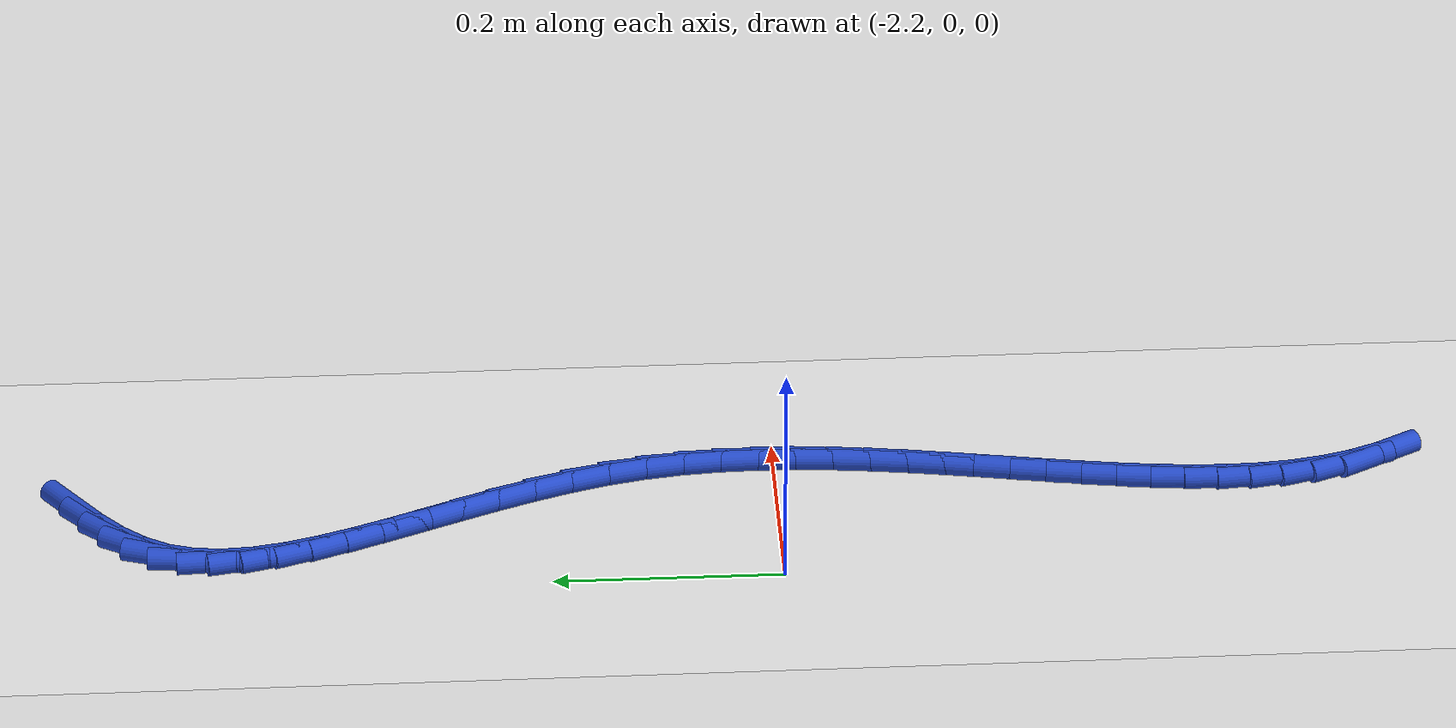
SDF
<sdf version="1.6">
 <world name="default">
  <model name="ground_plane">
   <static>1</static>
   <link name="link">
    <collision name="collision">
     <geometry><plane><normal>0 0 1</normal><size>100 100</size></plane></geometry>
     <surface><friction><ode><mu>100</mu><mu2>50</mu2></ode></friction></surface>
    </collision>
    <visual name="visual">
     <cast_shadows>0</cast_shadows>
     <geometry><plane><normal>0 0 1</normal><size>100 100</size></plane></geometry>
     <material>
      <script><uri>file://media/materials/scripts/gazebo.material</uri><name>Gazebo/WhiteGlow</name></script>
     </material>
    </visual>
   </link>
  </model>
  <model name="line">
   <link name="link_101">
    <pose>-2.079335822682489 0.6080927690205188 0.01 0 1.57 0.6452340867374168</pose>
    <collision name="collision">
     <geometry><cylinder><radius>0.01</radius><length>0.08</length></cylinder></geometry>
    </collision>
    <visual name="visual">
     <material>
      <script><name>Gazebo/Blue</name><uri>file://media/materials/scripts/gazebo.material</uri></script>
     </material>
     <geometry><cylinder><radius>0.01</radius><length>0.08</length></cylinder></geometry>
    </visual>
   </link>
   <link name="link_102">
    <pose>-2.103613552197989 0.5898186475611371 0.01 0 1.57 0.7309811095510289</pose>
    <collision name="collision">
     <geometry><cylinder><radius>0.01</radius><length>0.08</length></cylinder></geometry>
    </collision>
    <visual name="visual">
     <material>
      <script><name>Gazebo/Blue</name><uri>file://media/materials/scripts/gazebo.material</uri></script>
     </material>
     <geometry><cylinder><radius>0.01</radius><length>0.08</length></cylinder></geometry>
    </visual>
   </link>
   <link name="link_103">
    <pose>-2.1248468639873037 0.5707790354093718 0.01 0 1.57 0.8575633054270849</pose>
    <collision name="collision">
     <geometry><cylinder><radius>0.01</radius><length>0.08</length></cylinder></geometry>
    </collision>
    <visual name="visual">
     <material>
      <script><name>Gazebo/Blue</name><uri>file://media/materials/scripts/gazebo.material</uri></script>
     </material>
     <geometry><cylinder><radius>0.01</radius><length>0.08</length></cylinder></geometry>
    </visual>
   </link>
   <link name="link_104">
    <pose>-2.1422276333330315 0.5506895133046922 0.01 0 1.57 1.0349957607522082</pose>
    <collision name="collision">
     <geometry><cylinder><radius>0.01</radius><length>0.08</length></cylinder></geometry>
    </collision>
    <visual name="visual">
     <material>
      <script><name>Gazebo/Blue</name><uri>file://media/materials/scripts/gazebo.material</uri></script>
     </material>
     <geometry><cylinder><radius>0.01</radius><length>0.08</length></cylinder></geometry>
    </visual>
   </link>
   <link name="link_105">
    <pose>-2.1549477357759645 0.5292656620595214 0.01 0 1.57 1.2554170804062692</pose>
    <collision name="collision">
     <geometry><cylinder><radius>0.01</radius><length>0.08</length></cylinder></geometry>
    </collision>
    <visual name="visual">
     <material>
      <script><name>Gazebo/Blue</name><uri>file://media/materials/scripts/gazebo.material</uri></script>
     </material>
     <geometry><cylinder><radius>0.01</radius><length>0.08</length></cylinder></geometry>
    </visual>
   </link>
   <link name="link_106">
    <pose>-2.162443304194551 0.5062920783061883 0.01 0 1.57 1.4627438585432186</pose>
    <collision name="collision">
     <geometry><cylinder><radius>0.01</radius><length>0.08</length></cylinder></geometry>
    </collision>
    <visual name="visual">
     <material>
      <script><name>Gazebo/Blue</name><uri>file://media/materials/scripts/gazebo.material</uri></script>
     </material>
     <geometry><cylinder><radius>0.01</radius><length>0.08</length></cylinder></geometry>
    </visual>
   </link>
   <link name="link_107">
    <pose>-2.1650978001341064 0.481821029917903 0.01 0 1.57 -1.5100047591851165</pose>
    <collision name="collision">
     <geometry><cylinder><radius>0.01</radius><length>0.08</length></cylinder></geometry>
    </collision>
    <visual name="visual">
     <material>
      <script><name>Gazebo/Blue</name><uri>file://media/materials/scripts/gazebo.material</uri></script>
     </material>
     <geometry><cylinder><radius>0.01</radius><length>0.08</length></cylinder></geometry>
    </visual>
   </link>
   <link name="link_108">
    <pose>-2.163524316508735 0.45596966796583893 0.01 0 1.57 -1.3817315261582372</pose>
    <collision name="collision">
     <geometry><cylinder><radius>0.01</radius><length>0.08</length></cylinder></geometry>
    </collision>
    <visual name="visual">
     <material>
      <script><name>Gazebo/Blue</name><uri>file://media/materials/scripts/gazebo.material</uri></script>
     </material>
     <geometry><cylinder><radius>0.01</radius><length>0.08</length></cylinder></geometry>
    </visual>
   </link>
   <link name="link_109">
    <pose>-2.1583359462325404 0.4288551435211705 0.01 0 1.57 -1.2887148887508966</pose>
    <collision name="collision">
     <geometry><cylinder><radius>0.01</radius><length>0.08</length></cylinder></geometry>
    </collision>
    <visual name="visual">
     <material>
      <script><name>Gazebo/Blue</name><uri>file://media/materials/scripts/gazebo.material</uri></script>
     </material>
     <geometry><cylinder><radius>0.01</radius><length>0.08</length></cylinder></geometry>
    </visual>
   </link>
   <link name="link_110">
    <pose>-2.150145782219625 0.40059460765507054 0.01 0 1.57 -1.224192876022833</pose>
    <collision name="collision">
     <geometry><cylinder><radius>0.01</radius><length>0.08</length></cylinder></geometry>
    </collision>
    <visual name="visual">
     <material>
      <script><name>Gazebo/Blue</name><uri>file://media/materials/scripts/gazebo.material</uri></script>
     </material>
     <geometry><cylinder><radius>0.01</radius><length>0.08</length></cylinder></geometry>
    </visual>
   </link>
   <link name="link_111">
    <pose>-2.1395669173840943 0.371305211438713 0.01 0 1.57 -1.1824924988661036</pose>
    <collision name="collision">
     <geometry><cylinder><radius>0.01</radius><length>0.08</length></cylinder></geometry>
    </collision>
    <visual name="visual">
     <material>
      <script><name>Gazebo/Blue</name><uri>file://media/materials/scripts/gazebo.material</uri></script>
     </material>
     <geometry><cylinder><radius>0.01</radius><length>0.08</length></cylinder></geometry>
    </visual>
   </link>
   <link name="link_112">
    <pose>-2.127212444640051 0.3411041059432709 0.01 0 1.57 -1.159567567247763</pose>
    <collision name="collision">
     <geometry><cylinder><radius>0.01</radius><length>0.08</length></cylinder></geometry>
    </collision>
    <visual name="visual">
     <material>
      <script><name>Gazebo/Blue</name><uri>file://media/materials/scripts/gazebo.material</uri></script>
     </material>
     <geometry><cylinder><radius>0.01</radius><length>0.08</length></cylinder></geometry>
    </visual>
   </link>
   <link name="link_113">
    <pose>-2.1136954569016 0.31010844223991874 0.01 0 1.57 -1.1528491391381281</pose>
    <collision name="collision">
     <geometry><cylinder><radius>0.01</radius><length>0.08</length></cylinder></geometry>
    </collision>
    <visual name="visual">
     <material>
      <script><name>Gazebo/Blue</name><uri>file://media/materials/scripts/gazebo.material</uri></script>
     </material>
     <geometry><cylinder><radius>0.01</radius><length>0.08</length></cylinder></geometry>
    </visual>
   </link>
   <link name="link_114">
    <pose>-2.099629047082843 0.27843537139982966 0.01 0 1.57 -1.1609756282568922</pose>
    <collision name="collision">
     <geometry><cylinder><radius>0.01</radius><length>0.08</length></cylinder></geometry>
    </collision>
    <visual name="visual">
     <material>
      <script><name>Gazebo/Blue</name><uri>file://media/materials/scripts/gazebo.material</uri></script>
     </material>
     <geometry><cylinder><radius>0.01</radius><length>0.08</length></cylinder></geometry>
    </visual>
   </link>
   <link name="link_115">
    <pose>-2.085626308097885 0.24620204449417687 0.01 0 1.57 -1.1835701394138516</pose>
    <collision name="collision">
     <geometry><cylinder><radius>0.01</radius><length>0.08</length></cylinder></geometry>
    </collision>
    <visual name="visual">
     <material>
      <script><name>Gazebo/Blue</name><uri>file://media/materials/scripts/gazebo.material</uri></script>
     </material>
     <geometry><cylinder><radius>0.01</radius><length>0.08</length></cylinder></geometry>
    </visual>
   </link>
   <link name="link_116">
    <pose>-2.0723003328608303 0.21352561259413483 0.01 0 1.57 -1.2210822577147582</pose>
    <collision name="collision">
     <geometry><cylinder><radius>0.01</radius><length>0.08</length></cylinder></geometry>
    </collision>
    <visual name="visual">
     <material>
      <script><name>Gazebo/Blue</name><uri>file://media/materials/scripts/gazebo.material</uri></script>
     </material>
     <geometry><cylinder><radius>0.01</radius><length>0.08</length></cylinder></geometry>
    </visual>
   </link>
   <link name="link_117">
    <pose>-2.060264214285782 0.18052322677087662 0.01 0 1.57 -1.2746552339134483</pose>
    <collision name="collision">
     <geometry><cylinder><radius>0.01</radius><length>0.08</length></cylinder></geometry>
    </collision>
    <visual name="visual">
     <material>
      <script><name>Gazebo/Blue</name><uri>file://media/materials/scripts/gazebo.material</uri></script>
     </material>
     <geometry><cylinder><radius>0.01</radius><length>0.08</length></cylinder></geometry>
    </visual>
   </link>
   <link name="link_118">
    <pose>-2.050131045286843 0.1473120380955759 0.01 0 1.57 -1.3447274014953856</pose>
    <collision name="collision">
     <geometry><cylinder><radius>0.01</radius><length>0.08</length></cylinder></geometry>
    </collision>
    <visual name="visual">
     <material>
      <script><name>Gazebo/Blue</name><uri>file://media/materials/scripts/gazebo.material</uri></script>
     </material>
     <geometry><cylinder><radius>0.01</radius><length>0.08</length></cylinder></geometry>
    </visual>
   </link>
   <link name="link_119">
    <pose>-2.042470502325652 0.11400541149270166 0.01 0 1.57 -1.418275100715947</pose>
    <collision name="collision">
     <geometry><cylinder><radius>0.01</radius><length>0.08</length></cylinder></geometry>
    </collision>
    <visual name="visual">
     <material>
      <script><name>Gazebo/Blue</name><uri>file://media/materials/scripts/gazebo.material</uri></script>
     </material>
     <geometry><cylinder><radius>0.01</radius><length>0.08</length></cylinder></geometry>
    </visual>
   </link>
   <link name="link_120">
    <pose>-2.0373467528976605 0.08067262880306536 0.01 0 1.57 -1.4854858864701146</pose>
    <collision name="collision">
     <geometry><cylinder><radius>0.01</radius><length>0.08</length></cylinder></geometry>
    </collision>
    <visual name="visual">
     <material>
      <script><name>Gazebo/Blue</name><uri>file://media/materials/scripts/gazebo.material</uri></script>
     </material>
     <geometry><cylinder><radius>0.01</radius><length>0.08</length></cylinder></geometry>
    </visual>
   </link>
   <link name="link_121">
    <pose>-2.034497452878777 0.047354498309137266 0.01 0 1.57 -1.545468795955028</pose>
    <collision name="collision">
     <geometry><cylinder><radius>0.01</radius><length>0.08</length></cylinder></geometry>
    </collision>
    <visual name="visual">
     <material>
      <script><name>Gazebo/Blue</name><uri>file://media/materials/scripts/gazebo.material</uri></script>
     </material>
     <geometry><cylinder><radius>0.01</radius><length>0.08</length></cylinder></geometry>
    </visual>
   </link>
   <link name="link_122">
    <pose>-2.0336547993306975 0.014091352255613174 0.01 0 1.57 1.5437830430687247</pose>
    <collision name="collision">
     <geometry><cylinder><radius>0.01</radius><length>0.08</length></cylinder></geometry>
    </collision>
    <visual name="visual">
     <material>
      <script><name>Gazebo/Blue</name><uri>file://media/materials/scripts/gazebo.material</uri></script>
     </material>
     <geometry><cylinder><radius>0.01</radius><length>0.08</length></cylinder></geometry>
    </visual>
   </link>
   <link name="link_123">
    <pose>-2.0345509893151177 -0.019076477112811338 0.01 0 1.57 1.4992542589669182</pose>
    <collision name="collision">
     <geometry><cylinder><radius>0.01</radius><length>0.08</length></cylinder></geometry>
    </collision>
    <visual name="visual">
     <material>
      <script><name>Gazebo/Blue</name><uri>file://media/materials/scripts/gazebo.material</uri></script>
     </material>
     <geometry><cylinder><radius>0.01</radius><length>0.08</length></cylinder></geometry>
    </visual>
   </link>
   <link name="link_124">
    <pose>-2.0369182198937357 -0.052108657551440646 0.01 0 1.57 1.4625515380305645</pose>
    <collision name="collision">
     <geometry><cylinder><radius>0.01</radius><length>0.08</length></cylinder></geometry>
    </collision>
    <visual name="visual">
     <material>
      <script><name>Gazebo/Blue</name><uri>file://media/materials/scripts/gazebo.material</uri></script>
     </material>
     <geometry><cylinder><radius>0.01</radius><length>0.08</length></cylinder></geometry>
    </visual>
   </link>
   <link name="link_125">
    <pose>-2.040488688128247 -0.08496485681557989 0.01 0 1.57 1.4336144107154654</pose>
    <collision name="collision">
     <geometry><cylinder><radius>0.01</radius><length>0.08</length></cylinder></geometry>
    </collision>
    <visual name="visual">
     <material>
      <script><name>Gazebo/Blue</name><uri>file://media/materials/scripts/gazebo.material</uri></script>
     </material>
     <geometry><cylinder><radius>0.01</radius><length>0.08</length></cylinder></geometry>
    </visual>
   </link>
   <link name="link_126">
    <pose>-2.044994591080349 -0.11760474266053163 0.01 0 1.57 1.4123754356330098</pose>
    <collision name="collision">
     <geometry><cylinder><radius>0.01</radius><length>0.08</length></cylinder></geometry>
    </collision>
    <visual name="visual">
     <material>
      <script><name>Gazebo/Blue</name><uri>file://media/materials/scripts/gazebo.material</uri></script>
     </material>
     <geometry><cylinder><radius>0.01</radius><length>0.08</length></cylinder></geometry>
    </visual>
   </link>
   <link name="link_127">
    <pose>-2.0501681258117377 -0.1499879828416011 0.01 0 1.57 1.3988129193383525</pose>
    <collision name="collision">
     <geometry><cylinder><radius>0.01</radius><length>0.08</length></cylinder></geometry>
    </collision>
    <visual name="visual">
     <material>
      <script><name>Gazebo/Blue</name><uri>file://media/materials/scripts/gazebo.material</uri></script>
     </material>
     <geometry><cylinder><radius>0.01</radius><length>0.08</length></cylinder></geometry>
    </visual>
   </link>
   <link name="link_128">
    <pose>-2.0557414893841104 -0.18207424511409262 0.01 0 1.57 1.3929908528212427</pose>
    <collision name="collision">
     <geometry><cylinder><radius>0.01</radius><length>0.08</length></cylinder></geometry>
    </collision>
    <visual name="visual">
     <material>
      <script><name>Gazebo/Blue</name><uri>file://media/materials/scripts/gazebo.material</uri></script>
     </material>
     <geometry><cylinder><radius>0.01</radius><length>0.08</length></cylinder></geometry>
    </visual>
   </link>
   <link name="link_129">
    <pose>-2.0614468788591624 -0.21382319723331056 0.01 0 1.57 1.39508874550703</pose>
    <collision name="collision">
     <geometry><cylinder><radius>0.01</radius><length>0.08</length></cylinder></geometry>
    </collision>
    <visual name="visual">
     <material>
      <script><name>Gazebo/Blue</name><uri>file://media/materials/scripts/gazebo.material</uri></script>
     </material>
     <geometry><cylinder><radius>0.01</radius><length>0.08</length></cylinder></geometry>
    </visual>
   </link>
   <link name="link_130">
    <pose>-2.0670164912985904 -0.24519450695455924 0.01 0 1.57 1.405423119011024</pose>
    <collision name="collision">
     <geometry><cylinder><radius>0.01</radius><length>0.08</length></cylinder></geometry>
    </collision>
    <visual name="visual">
     <material>
      <script><name>Gazebo/Blue</name><uri>file://media/materials/scripts/gazebo.material</uri></script>
     </material>
     <geometry><cylinder><radius>0.01</radius><length>0.08</length></cylinder></geometry>
    </visual>
   </link>
   <link name="link_131">
    <pose>-2.072182523764092 -0.2761478420331429 0.01 0 1.57 1.4244603246473375</pose>
    <collision name="collision">
     <geometry><cylinder><radius>0.01</radius><length>0.08</length></cylinder></geometry>
    </collision>
    <visual name="visual">
     <material>
      <script><name>Gazebo/Blue</name><uri>file://media/materials/scripts/gazebo.material</uri></script>
     </material>
     <geometry><cylinder><radius>0.01</radius><length>0.08</length></cylinder></geometry>
    </visual>
   </link>
   <link name="link_132">
    <pose>-2.076677173317363 -0.3066428702243668 0.01 0 1.57 1.4528170569138392</pose>
    <collision name="collision">
     <geometry><cylinder><radius>0.01</radius><length>0.08</length></cylinder></geometry>
    </collision>
    <visual name="visual">
     <material>
      <script><name>Gazebo/Blue</name><uri>file://media/materials/scripts/gazebo.material</uri></script>
     </material>
     <geometry><cylinder><radius>0.01</radius><length>0.08</length></cylinder></geometry>
    </visual>
   </link>
   <link name="link_133">
    <pose>-2.0802326370200994 -0.3366392592835336 0.01 0 1.57 1.491240195679332</pose>
    <collision name="collision">
     <geometry><cylinder><radius>0.01</radius><length>0.08</length></cylinder></geometry>
    </collision>
    <visual name="visual">
     <material>
      <script><name>Gazebo/Blue</name><uri>file://media/materials/scripts/gazebo.material</uri></script>
     </material>
     <geometry><cylinder><radius>0.01</radius><length>0.08</length></cylinder></geometry>
    </visual>
   </link>
   <link name="link_134">
    <pose>-2.082581111933999 -0.3660966769659485 0.01 0 1.57 1.5405513888368652</pose>
    <collision name="collision">
     <geometry><cylinder><radius>0.01</radius><length>0.08</length></cylinder></geometry>
    </collision>
    <visual name="visual">
     <material>
      <script><name>Gazebo/Blue</name><uri>file://media/materials/scripts/gazebo.material</uri></script>
     </material>
     <geometry><cylinder><radius>0.01</radius><length>0.08</length></cylinder></geometry>
    </visual>
   </link>
   <link name="link_135">
    <pose>-2.0834547951207574 -0.3949747910269157 0.01 0 1.57 -1.5400573117263652</pose>
    <collision name="collision">
     <geometry><cylinder><radius>0.01</radius><length>0.08</length></cylinder></geometry>
    </collision>
    <visual name="visual">
     <material>
      <script><name>Gazebo/Blue</name><uri>file://media/materials/scripts/gazebo.material</uri></script>
     </material>
     <geometry><cylinder><radius>0.01</radius><length>0.08</length></cylinder></geometry>
    </visual>
   </link>
   <link name="link_136">
    <pose>-2.0825858836420714 -0.42323326922173965 0.01 0 1.57 -1.4668439672728941</pose>
    <collision name="collision">
     <geometry><cylinder><radius>0.01</radius><length>0.08</length></cylinder></geometry>
    </collision>
    <visual name="visual">
     <material>
      <script><name>Gazebo/Blue</name><uri>file://media/materials/scripts/gazebo.material</uri></script>
     </material>
     <geometry><cylinder><radius>0.01</radius><length>0.08</length></cylinder></geometry>
    </visual>
   </link>
   <link name="link_137">
    <pose>-2.0797065745596375 -0.4508317793057246 0.01 0 1.57 -1.3813538615034482</pose>
    <collision name="collision">
     <geometry><cylinder><radius>0.01</radius><length>0.08</length></cylinder></geometry>
    </collision>
    <visual name="visual">
     <material>
      <script><name>Gazebo/Blue</name><uri>file://media/materials/scripts/gazebo.material</uri></script>
     </material>
     <geometry><cylinder><radius>0.01</radius><length>0.08</length></cylinder></geometry>
    </visual>
   </link>
   <link name="link_138">
    <pose>-2.0745490649351526 -0.4777299890341751 0.01 0 1.57 -1.2843892592032613</pose>
    <collision name="collision">
     <geometry><cylinder><radius>0.01</radius><length>0.08</length></cylinder></geometry>
    </collision>
    <visual name="visual">
     <material>
      <script><name>Gazebo/Blue</name><uri>file://media/materials/scripts/gazebo.material</uri></script>
     </material>
     <geometry><cylinder><radius>0.01</radius><length>0.08</length></cylinder></geometry>
    </visual>
   </link>
   <link name="link_139">
    <pose>-2.066845551830313 -0.5038875661623949 0.01 0 1.57 -1.1778960362432405</pose>
    <collision name="collision">
     <geometry><cylinder><radius>0.01</radius><length>0.08</length></cylinder></geometry>
    </collision>
    <visual name="visual">
     <material>
      <script><name>Gazebo/Blue</name><uri>file://media/materials/scripts/gazebo.material</uri></script>
     </material>
     <geometry><cylinder><radius>0.01</radius><length>0.08</length></cylinder></geometry>
    </visual>
   </link>
   <link name="link_140">
    <pose>-2.056328232306815 -0.5292641784456898 0.01 0 1.57 -1.0653878634212588</pose>
    <collision name="collision">
     <geometry><cylinder><radius>0.01</radius><length>0.08</length></cylinder></geometry>
    </collision>
    <visual name="visual">
     <material>
      <script><name>Gazebo/Blue</name><uri>file://media/materials/scripts/gazebo.material</uri></script>
     </material>
     <geometry><cylinder><radius>0.01</radius><length>0.08</length></cylinder></geometry>
    </visual>
   </link>
  </model>
 </world>
</sdf>
